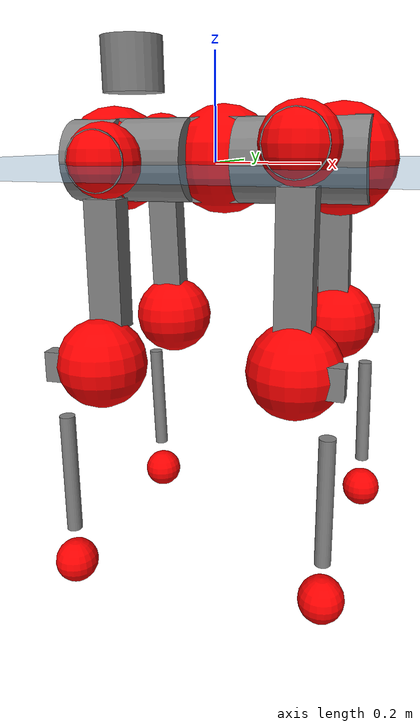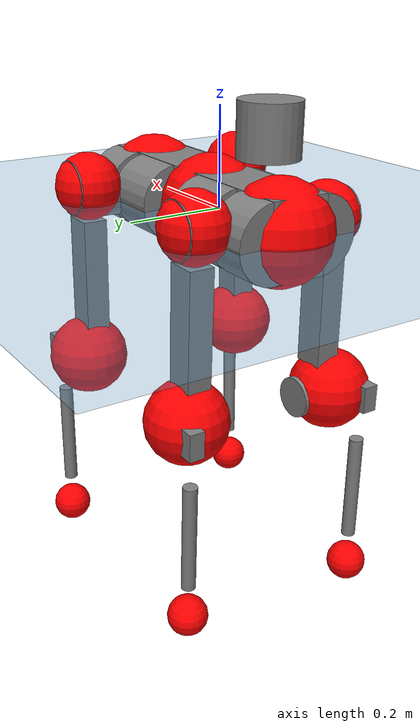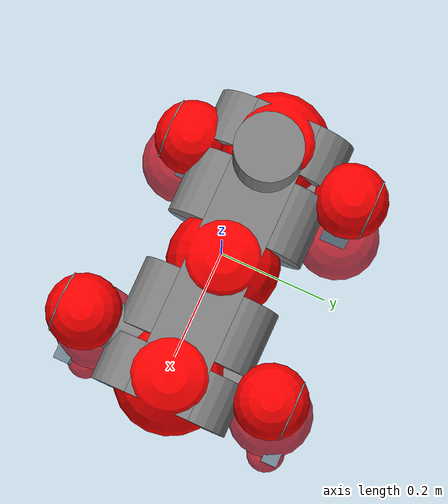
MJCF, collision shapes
<mujoco model="anymal_c">
  <compiler angle="radian" assetdir="assets" balanceinertia="true" inertiafromgeom="false"/>

  <option timestep="0.005" density="1.2" viscosity="2e-05"/>

  <size nkey="1"/>

  <visual>
    <quality shadowsize="8192"/>
    <map shadowclip="0.5"/>
  </visual>

  <default>
    <default class="/">
      <material specular="0" shininess="0.25"/>
      <geom contype="0" conaffinity="0" group="1" solref="-1000 -80"/>
      <site size="0.01 0.005 0.005" group="5"/>
      <general forcelimited="true" forcerange="-80 80" biastype="affine" gainprm="80" biasprm="0 -80 -2"/>
      <default class="anymal_c">
        <joint armature="0.01" damping="0.01" frictionloss="0.1"/>
        <default class="visual">
          <geom type="mesh" group="2"/>
          <default class="visual_zflip"/>
        </default>
        <default class="collision">
          <geom type="cylinder" group="3"/>
          <default class="foot">
            <geom size="0.03 0 0" type="sphere" condim="6" priority="1" friction="0.8 0.02 0.01" solimp="0.015 1 0.03"/>
          </default>
        </default>
      </default>
      <default class="reward_collision_sphere">
        <geom group="5" rgba="1 0 0 1"/>
      </default>
    </default>
  </default>

  <asset>
    <texture type="skybox" colorspace="auto" name="//unnamed_texture_0" builtin="gradient" rgb1="0.95 0.95 0.95" rgb2="0.95 0.95 0.95" width="100" height="600"/>
    <texture type="2d" colorspace="auto" name="texplane" builtin="checker" rgb1="0.345 0.575 0.748" rgb2="0.345 0.575 0.748" markrgb="1 1 1" width="512" height="512"/>
    <texture type="2d" colorspace="linear" name="base" file="base.png"/>
    <texture type="2d" colorspace="linear" name="top_shell" file="top_shell.png"/>
    <texture type="2d" colorspace="linear" name="bottom_shell" file="bottom_shell.png"/>
    <texture type="2d" colorspace="linear" name="remote" file="remote.png"/>
    <texture type="2d" colorspace="linear" name="hatch" file="hatch.png"/>
    <texture type="2d" colorspace="linear" name="handle" file="handle.png"/>
    <texture type="2d" colorspace="linear" name="face" file="face.png"/>
    <texture type="2d" colorspace="linear" name="battery" file="battery.png"/>
    <texture type="2d" colorspace="linear" name="lidar_cage" file="lidar_cage.png"/>
    <texture type="2d" colorspace="linear" name="depth_camera" file="depth_camera.png"/>
    <texture type="2d" colorspace="linear" name="wide_angle_camera" file="wide_angle_camera.png"/>
    <texture type="2d" colorspace="linear" name="lidar" file="lidar.png"/>
    <texture type="2d" colorspace="linear" name="drive" file="drive.png"/>
    <texture type="2d" colorspace="linear" name="hip_l" file="hip_l.png"/>
    <texture type="2d" colorspace="linear" name="shank_l" file="shank_l.png"/>
    <texture type="2d" colorspace="linear" name="foot" file="foot.png"/>
    <texture type="2d" colorspace="linear" name="thigh" file="thigh.png"/>
    <texture type="2d" colorspace="linear" name="shank_r" file="shank_r.png"/>
    <texture type="2d" colorspace="linear" name="hip_r" file="hip_r.png"/>
    <material name="MatPlane" class="/" texture="texplane" texuniform="true" texrepeat="2 2" specular="0.9" shininess="0.5"/>
    <material name="black_plastic" class="/" rgba="0.007 0.007 0.007 1"/>
    <material name="green" class="/" rgba="0.052 0.178 0.033 1"/>
    <material name="red" class="/" rgba="0.178 0.006 0.005 1"/>
    <material name="yellow" class="/" rgba="0.178 0.119 0.006 1"/>
    <material name="lwl" class="/" rgba="0.8 0.8 0.8 1"/>
    <material name="base" class="/" texture="base"/>
    <material name="top_shell" class="/" texture="top_shell"/>
    <material name="bottom_shell" class="/" texture="bottom_shell"/>
    <material name="hip_l" class="/" texture="hip_l"/>
    <material name="thigh" class="/" texture="thigh"/>
    <material name="shank_l" class="/" texture="shank_l"/>
    <material name="foot" class="/" texture="foot"/>
    <material name="hip_r" class="/" texture="hip_r"/>
    <material name="shank" class="/" texture="shank_r"/>
    <material name="hatch" class="/" texture="hatch"/>
    <material name="remote" class="/" texture="remote"/>
    <material name="handle" class="/" texture="handle"/>
    <material name="face" class="/" texture="face"/>
    <material name="depth_camera" class="/" texture="depth_camera"/>
    <material name="wide_angle_camera" class="/" texture="wide_angle_camera"/>
    <material name="battery" class="/" texture="battery"/>
    <material name="lidar_cage" class="/" texture="lidar_cage"/>
    <material name="lidar" class="/" texture="lidar"/>
    <material name="drive" class="/" texture="drive"/>
    <mesh name="base_0" class="/" file="base_0.obj"/>
    <mesh name="base_1" class="/" file="base_1.obj"/>
    <mesh name="base_2" class="/" file="base_2.obj"/>
    <mesh name="base_3" class="/" file="base_3.obj"/>
    <mesh name="base_4" class="/" file="base_4.obj"/>
    <mesh name="base_5" class="/" file="base_5.obj"/>
    <mesh name="top_shell" class="/" file="top_shell.obj"/>
    <mesh name="bottom_shell" class="/" file="bottom_shell.obj"/>
    <mesh name="remote" class="/" file="remote.obj"/>
    <mesh name="handle" class="/" file="handle.obj"/>
    <mesh name="face" class="/" file="face.obj"/>
    <mesh name="wide_angle_camera" class="/" file="wide_angle_camera.obj"/>
    <mesh name="depth_camera" class="/" file="depth_camera.obj"/>
    <mesh name="battery" class="/" file="battery.obj"/>
    <mesh name="lidar_cage" class="/" file="lidar_cage.obj"/>
    <mesh name="lidar" class="/" file="lidar.obj"/>
    <mesh name="drive" class="/" file="drive.obj"/>
    <mesh name="hip_l" class="/" file="hip_l.obj"/>
    <mesh name="thigh" class="/" file="thigh.obj"/>
    <mesh name="shank_l" class="/" file="shank_l.obj"/>
    <mesh name="foot" class="/" file="foot.obj"/>
    <mesh name="hip_r" class="/" file="hip_r.obj"/>
    <mesh name="hatch" class="/" file="hatch.obj"/>
    <mesh name="shank_r" class="/" file="shank_r.obj"/>
  </asset>

  <worldbody>
    <geom name="floor" class="/" size="100 100 0.125" type="plane" group="0" material="MatPlane"/>
    <light name="toplight_shadow" class="/" pos="0 0 5" dir="0.0990148 0.0990148 -0.990148" type="directional" ambient="0.04 0.04 0.04" diffuse="0.55 0.55 0.55" specular="0.12 0.12 0.12"/>
    <light name="toplight_fill" class="/" pos="0 0 5" dir="0.0990148 0.0990148 -0.990148" type="directional" castshadow="false" ambient="0.04 0.04 0.04" diffuse="0.3 0.3 0.3" specular="0.08 0.08 0.08"/>
    <body name="trunk" childclass="anymal_c" pos="0.013903 0.0097096 0.00580116" quat="0.999984 0.00212804 -0.00514095 0.000890212">
      <inertial pos="0.0158309 0.00102265 0.0666858" quat="0.493216 0.495134 0.486962 0.523878" mass="11.1302" diaginertia="0.0203466 0.134558 0.736467"/>
      <joint name="//unnamed_joint_0" type="free" armature="0" damping="0" frictionloss="0"/>
      <geom name="//unnamed_geom_1" class="visual" material="green" mesh="base_0"/>
      <geom name="//unnamed_geom_2" class="visual" material="yellow" mesh="base_1"/>
      <geom name="//unnamed_geom_3" class="visual" material="red" mesh="base_2"/>
      <geom name="//unnamed_geom_4" class="visual" material="black_plastic" mesh="base_3"/>
      <geom name="//unnamed_geom_5" class="visual" material="lwl" mesh="base_4"/>
      <geom name="//unnamed_geom_6" class="visual" material="base" mesh="base_5"/>
      <geom name="trunk_1" class="collision" size="0.247276 0.0596873 0.0767408" type="box"/>
      <geom name="trunk_2" class="collision" size="0.0767408 0.061819" pos="0.108142 0.0517253 0" quat="0.707107 0 0.707107 0"/>
      <geom name="trunk_3" class="collision" size="0.0767408 0.061819" pos="-0.108142 0.0517253 0" quat="0.707107 0 0.707107 0"/>
      <geom name="trunk_4" class="collision" size="0.0767408 0.061819" pos="0.108142 -0.0517253 0" quat="0.707107 0 0.707107 0"/>
      <geom name="trunk_5" class="collision" size="0.0767408 0.061819" pos="-0.108142 -0.0517253 0" quat="0.707107 0 0.707107 0"/>
      <geom name="//unnamed_geom_12" class="visual" material="top_shell" mesh="top_shell"/>
      <geom name="//unnamed_geom_13" class="visual" material="bottom_shell" mesh="bottom_shell"/>
      <geom name="//unnamed_geom_14" class="visual" material="remote" mesh="remote"/>
      <geom name="//unnamed_geom_15" class="visual" material="handle" mesh="handle"/>
      <geom name="//unnamed_geom_16" class="visual" pos="0.206092 0 0" quat="1 0 0 0" material="face" mesh="face"/>
      <geom name="trunk_6" class="collision" size="0.0468972 0.0596873 0.0767408" pos="0.233439 0 0" type="box"/>
      <geom name="//unnamed_geom_18" class="collision" size="0.0767408 0.0468972" pos="0.233439 0.0517253 0" quat="0.707107 0 0.707107 0"/>
      <geom name="//unnamed_geom_19" class="collision" size="0.0767408 0.0468972" pos="0.233439 -0.0517253 0" quat="0.707107 0 0.707107 0"/>
      <geom name="//unnamed_geom_20" class="visual" pos="0.22957 0 -0.0448667" quat="0.965926 0 0.258819 0" material="depth_camera" mesh="depth_camera"/>
      <geom name="//unnamed_geom_21" class="visual" pos="0.255067 0 0.0197887" material="wide_angle_camera" mesh="wide_angle_camera"/>
      <geom name="//unnamed_geom_22" class="visual_zflip" pos="-0.206092 0 0" quat="0 0 0 1" material="face" mesh="face"/>
      <geom name="trunk_7" class="collision" size="0.0468972 0.0596873 0.0767408" pos="-0.233439 0 0" quat="0 0 0 1" type="box"/>
      <geom name="//unnamed_geom_24" class="collision" size="0.0767408 0.0468972" pos="-0.233439 -0.0517253 0" quat="0 -0.707107 0 0.707107"/>
      <geom name="//unnamed_geom_25" class="collision" size="0.0767408 0.0468972" pos="-0.233439 0.0517253 0" quat="0 -0.707107 0 0.707107"/>
      <geom name="//unnamed_geom_26" class="visual" pos="-0.22957 0 -0.0448667" quat="0 -0.258819 0 0.965926" material="depth_camera" mesh="depth_camera"/>
      <geom name="//unnamed_geom_27" class="visual_zflip" pos="-0.255067 0 0.0197887" quat="0 0 0 1" material="wide_angle_camera" mesh="wide_angle_camera"/>
      <geom name="//unnamed_geom_28" class="visual" material="battery" mesh="battery"/>
      <geom name="//unnamed_geom_29" class="visual" pos="0 0.0597049 0.0321333" quat="0.683013 -0.183013 0.183013 0.683013" material="depth_camera" mesh="depth_camera"/>
      <geom name="//unnamed_geom_30" class="visual" pos="0 -0.0597049 0.0321333" quat="0.683013 0.183013 0.183013 -0.683013" material="depth_camera" mesh="depth_camera"/>
      <geom name="//unnamed_geom_31" class="visual" pos="-0.180983 0 0.0971588" quat="1 0 0 0" material="lidar_cage" mesh="lidar_cage"/>
      <geom name="trunk_8" class="collision" size="0.0596873 0.0511606" pos="-0.180983 0 0.176472"/>
      <geom name="//unnamed_geom_33" class="visual" pos="-0.180983 9.49675e-05 0.187973" quat="0.707107 0 0 -0.707107" material="lidar" mesh="lidar"/>
      <geom name="//unnamed_geom_34" class="visual" pos="0.149112 0.0770561 -1.00561e-08" quat="0.258819 0.965926 0 0" material="drive" mesh="drive"/>
      <geom name="//unnamed_geom_35" class="visual" pos="0.149112 -0.0770561 1.00561e-08" quat="0.258819 -0.965926 0 0" material="drive" mesh="drive"/>
      <geom name="//unnamed_geom_36" class="visual" pos="-0.149112 0.0770561 1.00561e-08" quat="0 0 0.965926 -0.258819" material="drive" mesh="drive"/>
      <geom name="//unnamed_geom_37" class="visual" pos="-0.149112 -0.0770561 -1.00561e-08" quat="0 0 -0.965926 -0.258819" material="drive" mesh="drive"/>
      <geom name="//unnamed_geom_38" class="visual" pos="0.057676 0 0.0964979" quat="1 0 0 0" material="hatch" mesh="hatch"/>
      <geom name="//unnamed_geom_39" class="reward_collision_sphere" size="0.102321"/>
      <geom name="//unnamed_geom_40" class="reward_collision_sphere" size="0.102321" pos="0.223743 0 0"/>
      <geom name="//unnamed_geom_41" class="reward_collision_sphere" size="0.102321" pos="-0.223743 0 0"/>
      <site name="imu" pos="0.123631 -0.0210158 0.0822263" size="0.00852676"/>
      <camera name="track" pos="0 -1.47786 0" quat="0.707107 0.707107 0 0" mode="trackcom"/>
      <camera name="ego_camera" pos="0.223743 0 -0.0528756" quat="-0.5 -0.5 0.5 0.5"/>
      <body name="LF_HIP" pos="0.157698 0.0856793 -0.00591115" quat="0.254898 0.966952 0.00240965 0.00509975">
        <inertial pos="0.0430117 -0.00378456 -0.00333813" quat="-0.128063 0.707629 -0.135854 0.681472" mass="1.4971" diaginertia="0.000155432 0.0010699 0.0101591"/>
        <joint name="LF_HAA" pos="0 0 0" axis="0.999926 0.011695 0.00335255" stiffness="0.0253712" range="-0.704091 0.731901" armature="0.00398923" damping="0.0532947" frictionloss="0.058851"/>
        <geom name="//unnamed_geom_42" class="visual" pos="0 -0.000591553 9.71621e-05" quat="0.258819 -0.965926 0 0" material="hip_l" mesh="hip_l"/>
        <geom name="//unnamed_geom_43" class="visual" pos="0.0297827 -0.0394778 -0.0271044" quat="0.183013 -0.683013 0.683013 0.183013" material="drive" mesh="drive"/>
        <geom name="//unnamed_geom_44" class="collision" size="0.0426338 0.0596873" pos="0.0297827 -0.00883748 -0.00912764" quat="-0.353553 -0.612372 0.612372 -0.353553"/>
        <body name="LF_THIGH" pos="0.0328394 -0.0560142 -0.0609489" quat="0.18292 -0.683099 0.68293 0.183095">
          <inertial pos="0.00146992 -0.00138099 -0.337407" quat="0.993564 -0.00778978 -0.0789526 0.0808476" mass="2.01742" diaginertia="0.000944053 0.00631045 0.0182829"/>
          <joint name="LF_HFE" pos="0 0 0" axis="0.999427 0.00115146 -0.0338412" range="-2.91352 2.92725" armature="0.00419288" damping="0.0773023" frictionloss="0.0548423"/>
          <geom name="//unnamed_geom_45" class="visual" pos="-0.00480939 -7.57847e-06 0" quat="0.707107 0 0 -0.707107" material="thigh" mesh="thigh"/>
          <geom name="//unnamed_geom_46" class="collision" size="0.0554239 0.034107" pos="0.0198883 0 0" quat="0.5 0.5 -0.5 -0.5"/>
          <geom name="//unnamed_geom_47" class="collision" size="0.0319753 0.0255803 0.120495" pos="0.0149162 0 -0.186801" quat="0.707107 0 0 -0.707107" type="box"/>
          <geom name="//unnamed_geom_48" class="visual" pos="0.0498698 0 -0.376738" quat="1 0 0 0" material="drive" mesh="drive"/>
          <geom name="//unnamed_geom_49" class="collision" size="0.0426338 0.0596873" pos="0.0150654 0 -0.376738" quat="0.707107 0 0.707107 0"/>
          <geom name="//unnamed_geom_50" class="reward_collision_sphere" size="0.0682141" pos="0.0124302 0 0"/>
          <body name="LF_SHANK" pos="0.0488993 -0.00346632 -0.375906" quat="0.99999 0.00224088 0.00277599 0.0028019">
            <inertial pos="-0.00556966 -0.0527397 -0.0962518" quat="0.98955 -0.118404 -0.0451266 -0.0688167" mass="0.346053" diaginertia="0.000328911 0.0018557 0.00505407"/>
            <joint name="LF_KFE" pos="0 0 0" axis="0.999849 -0.00614974 0.0162232" stiffness="0.00155297" range="-3.11757 3.37444" armature="0.0122214" damping="0.0108178" frictionloss="0.0943338"/>
            <geom name="//unnamed_geom_51" class="visual" pos="-0.00156824 -0.00836192 0" quat="0.707107 0 0 -0.707107" material="shank_l" mesh="shank_l"/>
            <geom name="LF_kfe_act" class="collision" size="0.0511606 0.0170535" pos="0.00994413 0 0" quat="0.5 0.5 -0.5 -0.5"/>
            <geom name="//unnamed_geom_53" class="collision" size="0.049028 0.0287778 0.0162008" pos="0.00994413 -0.0424879 0" quat="0.5 0.5 -0.5 -0.5" type="box"/>
            <geom name="//unnamed_geom_54" class="visual" pos="0.00648893 -0.0676838 -0.446759" quat="0.382683 0 0 -0.92388" material="foot" mesh="foot"/>
            <geom name="LF_calf" class="collision" size="0.0149218 0.120442" pos="0.00648855 -0.0649891 -0.223379" quat="0.707107 0 0 -0.707107"/>
            <geom name="LF_foot" class="foot" size="0.0220684" pos="0.00648855 -0.0649891 -0.417016" quat="0.707107 0 0 -0.707107"/>
            <geom name="//unnamed_geom_57" class="reward_collision_sphere" size="0.0852676" pos="-0.0248603 0 0"/>
            <geom name="//unnamed_geom_58" class="reward_collision_sphere" size="0.0426338" pos="0.00648855 -0.0649891 -0.417016"/>
            <site name="LF_foot" class="foot" pos="0.00648855 -0.0649891 -0.417016" quat="0.707107 0 0 -0.707107" size="0.00852676"/>
          </body>
        </body>
      </body>
      <body name="RF_HIP" pos="0.152235 -0.0886855 -1.34724e-06" quat="0.255829 -0.966721 0.00122587 -0.000654172">
        <inertial pos="0.0172716 0.00713304 -0.0120205" quat="0.133315 0.680084 0.12825 0.709412" mass="1.21397" diaginertia="0.000161278 0.00099369 0.0129715"/>
        <joint name="RF_HAA" pos="0 0 0" axis="0.999987 -0.00246099 0.00446117" stiffness="0.0155124" range="-0.650393 0.726603" armature="0.0147377" damping="0.0111689" frictionloss="0.0251383"/>
        <geom name="//unnamed_geom_59" class="visual" pos="0 0.000591548 9.71618e-05" quat="0.258819 0.965926 0 0" material="hip_r" mesh="hip_r"/>
        <geom name="//unnamed_geom_60" class="visual" pos="0.0297827 0.0394778 -0.0271044" quat="0.183013 0.683013 0.683013 -0.183013" material="drive" mesh="drive"/>
        <geom name="//unnamed_geom_61" class="collision" size="0.0426338 0.0596873" pos="0.0297827 0.00883748 -0.00912764" quat="-0.353553 0.612372 0.612372 0.353553"/>
        <body name="RF_THIGH" pos="0.029289 0.0579315 -0.0678783" quat="0.187141 0.681509 0.684681 -0.178144">
          <inertial pos="0.0253246 0.0146625 -0.320407" quat="0.991493 -0.00867164 -0.0870413 0.0963824" mass="2.41301" diaginertia="0.000990433 0.00759365 0.0205513"/>
          <joint name="RF_HFE" pos="0 0 0" axis="0.999918 0.00720096 0.0105489" stiffness="0.00918194" range="-3.04864 3.25145" armature="0.00865889" damping="0.0041438" frictionloss="0.0585805"/>
          <geom name="//unnamed_geom_62" class="visual" pos="-0.00480939 -7.57847e-06 0" quat="0.707107 0 0 -0.707107" material="thigh" mesh="thigh"/>
          <geom name="//unnamed_geom_63" class="collision" size="0.0554239 0.034107" pos="0.0198883 0 0" quat="0.5 0.5 0.5 0.5"/>
          <geom name="//unnamed_geom_64" class="collision" size="0.0319753 0.0255803 0.120495" pos="0.0149162 0 -0.186801" quat="0.707107 0 0 0.707107" type="box"/>
          <geom name="//unnamed_geom_65" class="visual" pos="0.0498698 0 -0.376738" quat="1 0 0 0" material="drive" mesh="drive"/>
          <geom name="//unnamed_geom_66" class="collision" size="0.0426338 0.0596873" pos="0.0150654 0 -0.376738" quat="0.707107 0 0.707107 0"/>
          <geom name="//unnamed_geom_67" class="reward_collision_sphere" size="0.0682141" pos="0.0124302 0 0"/>
          <body name="RF_SHANK" pos="0.0405692 0.00251705 -0.376875" quat="1 -0.000108467 0.000719008 0.000373177">
            <inertial pos="-0.00476489 0.0440945 -0.102325" quat="0.992231 0.120213 0.00699052 0.0312571" mass="0.296377" diaginertia="0.000225103 0.00196159 0.00384925"/>
            <joint name="RF_KFE" pos="0 0 0" axis="0.998471 0.0437581 -0.0337905" stiffness="0.0412279" range="-3.10446 3.17308" armature="0.00813021" damping="0" frictionloss="0.0686345"/>
            <geom name="//unnamed_geom_68" class="visual" pos="-0.00156823 0.0083619 0" quat="0.707107 0 0 0.707107" material="shank" mesh="shank_r"/>
            <geom name="RF_kfe_act" class="collision" size="0.0511606 0.0170535" pos="0.00994413 0 0" quat="0.5 0.5 0.5 0.5"/>
            <geom name="//unnamed_geom_70" class="collision" size="0.049028 0.0287778 0.0162008" pos="0.00994413 0.0424879 0" quat="0.5 0.5 0.5 0.5" type="box"/>
            <geom name="//unnamed_geom_71" class="visual" pos="0.00648817 0.0676838 -0.446759" quat="0.382683 0 0 0.92388" material="foot" mesh="foot"/>
            <geom name="RF_calf" class="collision" size="0.0149218 0.120442" pos="0.00648855 0.0649891 -0.223379" quat="0.707107 0 0 0.707107"/>
            <geom name="RF_foot" class="foot" size="0.0291507" pos="0.00648855 0.0649891 -0.417016" quat="0.707107 0 0 0.707107"/>
            <geom name="//unnamed_geom_74" class="reward_collision_sphere" size="0.0852676" pos="-0.0248603 0 0"/>
            <geom name="//unnamed_geom_75" class="reward_collision_sphere" size="0.0426338" pos="0.00648855 0.0649891 -0.417016"/>
            <site name="RF_foot" class="foot" pos="0.00648855 0.0649891 -0.417016" quat="0.707107 0 0 0.707107" size="0.00852676"/>
          </body>
        </body>
      </body>
      <body name="LH_HIP" pos="-0.146397 0.074139 -0.00815682" quat="0.00607536 0.00440156 0.966473 -0.25666">
        <inertial pos="0.0142802 0.0145532 -0.0123554" quat="0.134792 0.6795 0.12801 0.709735" mass="1.63779" diaginertia="0.000177355 0.000940022 0.0138538"/>
        <joint name="LH_HAA" pos="0 0 0" axis="0.999853 -0.00938087 -0.0143398" range="-0.43362 0.680813" armature="0.00831956" damping="0.0168363" frictionloss="0.0609576"/>
        <geom name="//unnamed_geom_76" class="visual" pos="0 0.000591548 9.71618e-05" quat="-0.258819 -0.965926 0 0" material="hip_r" mesh="hip_r"/>
        <geom name="//unnamed_geom_77" class="visual" pos="0.0297827 0.0394778 -0.0271044" quat="0.183013 0.683013 0.683013 -0.183013" material="drive" mesh="drive"/>
        <geom name="//unnamed_geom_78" class="collision" size="0.0426338 0.0596873" pos="0.0297827 0.00883748 -0.00912764" quat="-0.353553 0.612372 0.612372 0.353553"/>
        <body name="LH_THIGH" pos="0.0430706 0.0473772 -0.0655348" quat="0.185771 0.686222 0.680214 -0.178597">
          <inertial pos="0.0152021 0.00288742 -0.321936" quat="0.984636 0.0189552 -0.129982 0.115058" mass="2.18143" diaginertia="0.000868745 0.00747824 0.015823"/>
          <joint name="LH_HFE" pos="0 0 0" axis="0.999947 0.0101991 0.00115805" range="-3.0967 3.12875" armature="0.0120209" damping="0.0776154" frictionloss="0.107735"/>
          <geom name="//unnamed_geom_79" class="visual" pos="-0.00480939 -7.57847e-06 0" quat="0.707107 0 0 -0.707107" material="thigh" mesh="thigh"/>
          <geom name="//unnamed_geom_80" class="collision" size="0.0554239 0.034107" pos="0.0198883 0 0" quat="0.5 0.5 -0.5 -0.5"/>
          <geom name="//unnamed_geom_81" class="collision" size="0.0319753 0.0255803 0.120495" pos="0.0149162 0 -0.186801" quat="0.707107 0 0 -0.707107" type="box"/>
          <geom name="//unnamed_geom_82" class="visual" pos="0.0498698 0 -0.376738" quat="1 0 0 0" material="drive" mesh="drive"/>
          <geom name="//unnamed_geom_83" class="collision" size="0.0426338 0.0596873" pos="0.0150654 0 -0.376738" quat="0.707107 0 0.707107 0"/>
          <geom name="//unnamed_geom_84" class="reward_collision_sphere" size="0.0682141" pos="0.0124302 0 0"/>
          <body name="LH_SHANK" pos="0.0450481 -0.00249104 -0.383805" quat="1 -6.95927e-05 7.53896e-06 -2.11729e-05">
            <inertial pos="0.00308851 0.0444321 -0.114727" quat="0.993223 0.114411 0.000443671 0.0204479" mass="0.366891" diaginertia="0.000308145 0.00204941 0.00459973"/>
            <joint name="LH_KFE" pos="0 0 0" axis="0.999982 -0.00593986 -0.000473578" stiffness="0.00286811" range="-3.06112 3.13011" armature="0.0118342" damping="0.0670229" frictionloss="0.0849978"/>
            <geom name="//unnamed_geom_85" class="visual" pos="-0.00156823 0.0083619 0" quat="-0.707107 0 0 -0.707107" material="shank" mesh="shank_r"/>
            <geom name="LH_kfe_act" class="collision" size="0.0511606 0.0170535" pos="0.00994413 0 0" quat="0.5 0.5 -0.5 -0.5"/>
            <geom name="//unnamed_geom_87" class="collision" size="0.049028 0.0287778 0.0162008" pos="0.00994413 0.0424879 0" quat="0.5 0.5 -0.5 -0.5" type="box"/>
            <geom name="//unnamed_geom_88" class="visual" pos="0.00648817 0.0676838 -0.446759" quat="-0.382683 0 0 -0.92388" material="foot" mesh="foot"/>
            <geom name="LH_calf" class="collision" size="0.0149218 0.120442" pos="0.00648855 0.0649891 -0.223379" quat="0.707107 0 0 -0.707107"/>
            <geom name="LH_foot" class="foot" size="0.0163687" pos="0.00648855 0.0649891 -0.417016" quat="0.707107 0 0 -0.707107"/>
            <geom name="//unnamed_geom_91" class="reward_collision_sphere" size="0.0852676" pos="-0.0248603 0 0"/>
            <geom name="//unnamed_geom_92" class="reward_collision_sphere" size="0.0426338" pos="0.00648855 0.0649891 -0.417016"/>
            <site name="LH_foot" class="foot" pos="0.00648855 0.0649891 -0.417016" quat="0.707107 0 0 -0.707107" size="0.00852676"/>
          </body>
        </body>
      </body>
      <body name="RH_HIP" pos="-0.151512 -0.063364 -0.0109575" quat="0.00469861 -0.000878256 -0.966267 -0.257499">
        <inertial pos="0.0276936 -0.0223079 -0.0112873" quat="-0.154514 0.668899 -0.166173 0.707875" mass="1.73279" diaginertia="0.00015931 0.000961112 0.0142188"/>
        <joint name="RH_HAA" pos="0 0 0" axis="0.999906 -0.00155991 0.013622" range="-0.772646 0.510046" armature="0.00201123" damping="0" frictionloss="0.137183"/>
        <geom name="//unnamed_geom_93" class="visual" pos="0 -0.000591553 9.71621e-05" quat="-0.258819 0.965926 0 0" material="hip_l" mesh="hip_l"/>
        <geom name="//unnamed_geom_94" class="visual" pos="0.0297827 -0.0394778 -0.0271044" quat="-0.183013 0.683013 -0.683013 -0.183013" material="drive" mesh="drive"/>
        <geom name="//unnamed_geom_95" class="collision" size="0.0426338 0.0596873" pos="0.0297827 -0.00883748 -0.00912764" quat="0.353553 0.612372 -0.612372 0.353553"/>
        <body name="RH_THIGH" pos="0.0303105 -0.0508217 -0.0440074" quat="-0.183435 0.680694 -0.685298 -0.182684">
          <inertial pos="0.014918 0.00702396 -0.325171" quat="0.993313 -0.00577162 -0.0765509 0.0862333" mass="2.21333" diaginertia="0.00105833 0.00696983 0.0209672"/>
          <joint name="RH_HFE" pos="0 0 0" axis="0.999883 -0.0120156 -0.0094564" stiffness="0.0470999" range="-2.88166 2.96963" armature="0.00550111" damping="0.0216709" frictionloss="0.102719"/>
          <geom name="//unnamed_geom_96" class="visual" pos="-0.00480939 -7.57847e-06 0" quat="0.707107 0 0 -0.707107" material="thigh" mesh="thigh"/>
          <geom name="//unnamed_geom_97" class="collision" size="0.0554239 0.034107" pos="0.0198883 0 0" quat="0.5 0.5 0.5 0.5"/>
          <geom name="//unnamed_geom_98" class="collision" size="0.0319753 0.0255803 0.120495" pos="0.0149162 0 -0.186801" quat="0.707107 0 0 0.707107" type="box"/>
          <geom name="//unnamed_geom_99" class="visual" pos="0.0498698 0 -0.376738" quat="1 0 0 0" material="drive" mesh="drive"/>
          <geom name="//unnamed_geom_100" class="collision" size="0.0426338 0.0596873" pos="0.0150654 0 -0.376738" quat="0.707107 0 0.707107 0"/>
          <geom name="//unnamed_geom_101" class="reward_collision_sphere" size="0.0682141" pos="0.0124302 0 0"/>
          <body name="RH_SHANK" pos="0.0658861 -0.0102701 -0.371253" quat="0.999999 0.000393446 0.000108159 -0.00134733">
            <inertial pos="-0.0125161 -0.0440692 -0.114447" quat="0.994157 -0.0980085 -0.016579 -0.0420982" mass="0.35031" diaginertia="0.00032844 0.00269982 0.0047067"/>
            <joint name="RH_KFE" pos="0 0 0" axis="0.999893 0.0141037 -0.00383288" stiffness="0.00176743" range="-3.34165 2.82939" armature="0.0136639" damping="0" frictionloss="0.0670426"/>
            <geom name="//unnamed_geom_102" class="visual" pos="-0.00156824 -0.00836192 0" quat="0.707107 0 0 -0.707107" material="shank_l" mesh="shank_l"/>
            <geom name="RH_kfe_act" class="collision" size="0.0511606 0.0170535" pos="0.00994413 0 0" quat="0.5 0.5 0.5 0.5"/>
            <geom name="//unnamed_geom_104" class="collision" size="0.049028 0.0287778 0.0162008" pos="0.00994413 -0.0424879 0" quat="0.5 0.5 0.5 0.5" type="box"/>
            <geom name="//unnamed_geom_105" class="visual" pos="0.00648893 -0.0676838 -0.446759" quat="0.382683 0 0 -0.92388" material="foot" mesh="foot"/>
            <geom name="RH_calf" class="collision" size="0.0149218 0.120442" pos="0.00648855 -0.0649891 -0.223379" quat="0.707107 0 0 0.707107"/>
            <geom name="RH_foot" class="foot" size="0.0286432" pos="0.00648855 -0.0649891 -0.417016" quat="0.707107 0 0 0.707107"/>
            <geom name="//unnamed_geom_108" class="reward_collision_sphere" size="0.0852676" pos="-0.0248603 0 0"/>
            <geom name="//unnamed_geom_109" class="reward_collision_sphere" size="0.0426338" pos="0.00648855 -0.0649891 -0.417016"/>
            <site name="RH_foot" class="foot" pos="0.00648855 -0.0649891 -0.417016" quat="0.707107 0 0 0.707107" size="0.00852676"/>
          </body>
        </body>
      </body>
    </body>
  </worldbody>

  <contact>
    <pair class="/" geom1="floor" geom2="LF_foot" name="//unnamed_contact_0"/>
    <pair class="/" geom1="floor" geom2="RF_foot" name="//unnamed_contact_1"/>
    <pair class="/" geom1="floor" geom2="LH_foot" name="//unnamed_contact_2"/>
    <pair class="/" geom1="floor" geom2="RH_foot" name="//unnamed_contact_3"/>
  </contact>

  <actuator>
    <general name="LF_HAA" class="/" joint="LF_HAA" forcerange="-70.4553 70.4553" gainprm="66.0913" biasprm="0 -66.0913 -1.748"/>
    <general name="LF_HFE" class="/" joint="LF_HFE" forcerange="-87.3349 87.3349" gainprm="66.0913" biasprm="0 -66.0913 -1.748"/>
    <general name="LF_KFE" class="/" joint="LF_KFE" forcerange="-72.8388 72.8388" gainprm="66.0913" biasprm="0 -66.0913 -1.748"/>
    <general name="RF_HAA" class="/" joint="RF_HAA" forcerange="-30.0162 30.0162" gainprm="66.0913" biasprm="0 -66.0913 -1.748"/>
    <general name="RF_HFE" class="/" joint="RF_HFE" forcerange="-68.0968 68.0968" gainprm="66.0913" biasprm="0 -66.0913 -1.748"/>
    <general name="RF_KFE" class="/" joint="RF_KFE" forcerange="-94.6559 94.6559" gainprm="66.0913" biasprm="0 -66.0913 -1.748"/>
    <general name="LH_HAA" class="/" joint="LH_HAA" forcerange="-72.7145 72.7145" gainprm="66.0913" biasprm="0 -66.0913 -1.748"/>
    <general name="LH_HFE" class="/" joint="LH_HFE" forcerange="-73.0225 73.0225" gainprm="66.0913" biasprm="0 -66.0913 -1.748"/>
    <general name="LH_KFE" class="/" joint="LH_KFE" forcerange="-67.0252 67.0252" gainprm="66.0913" biasprm="0 -66.0913 -1.748"/>
    <general name="RH_HAA" class="/" joint="RH_HAA" forcerange="-63.5878 63.5878" gainprm="66.0913" biasprm="0 -66.0913 -1.748"/>
    <general name="RH_HFE" class="/" joint="RH_HFE" forcerange="-80.5423 80.5423" gainprm="66.0913" biasprm="0 -66.0913 -1.748"/>
    <general name="RH_KFE" class="/" joint="RH_KFE" forcerange="-35.2003 35.2003" gainprm="66.0913" biasprm="0 -66.0913 -1.748"/>
  </actuator>

  <sensor>
    <gyro site="imu" name="imu_angular_velocity"/>
    <velocimeter site="imu" name="imu_linear_velocity"/>
    <framelinvel objtype="site" objname="LF_foot" name="LF_foot_global_linear_velocity"/>
    <framelinvel objtype="site" objname="RF_foot" name="RF_foot_global_linear_velocity"/>
    <framelinvel objtype="site" objname="LH_foot" name="LH_foot_global_linear_velocity"/>
    <framelinvel objtype="site" objname="RH_foot" name="RH_foot_global_linear_velocity"/>
  </sensor>

  <keyframe>
    <key name="home" qpos="0 0 0.55 1 0 0 0 0 0.4 -0.8 0 -0.4 0.8 0 -0.4 0.8 0 0.4 -0.8"/>
  </keyframe>
</mujoco>
